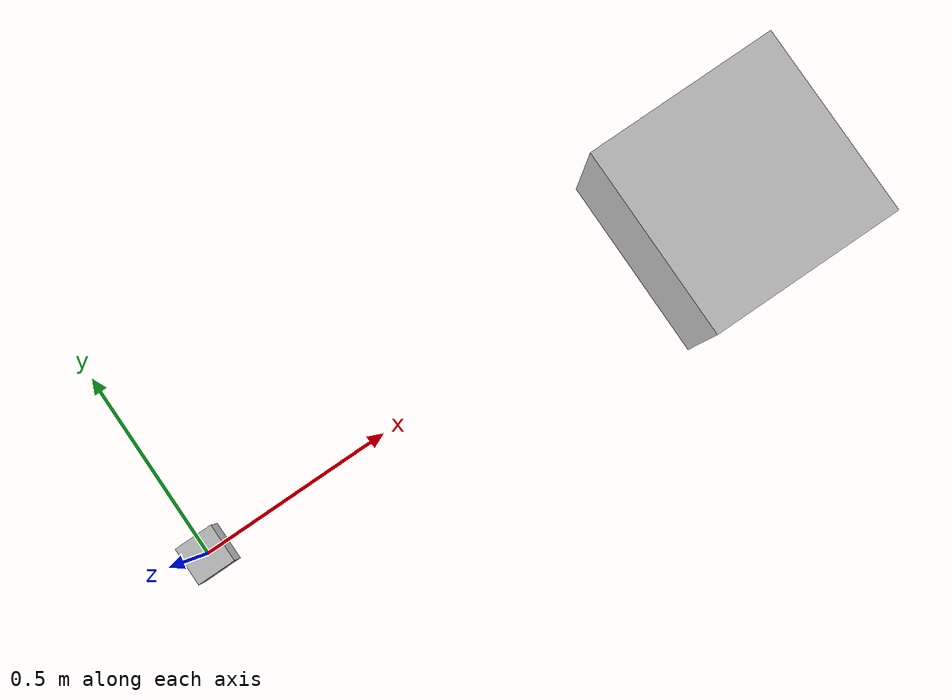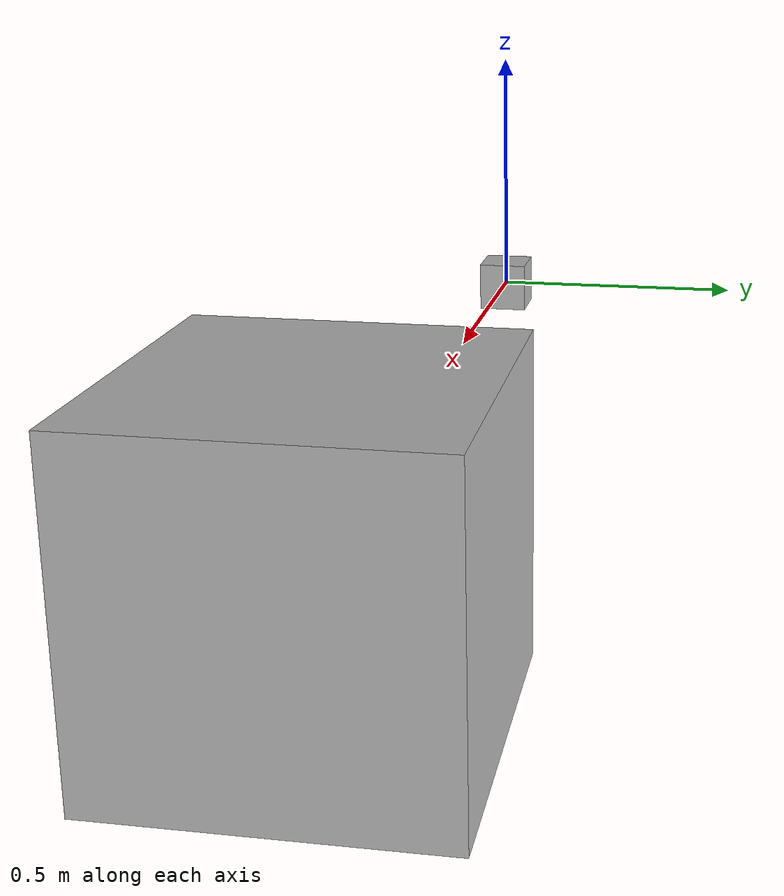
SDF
<?xml version="1.0" ?>
<sdf version="1.7">
  <world name="default">
    <include>
      <uri>model://sun</uri>
    </include>

    <model name="box">
      <static>1</static>
      <pose>1.5 0 0 0 -1.57 0</pose>
      <link name="link">
        <collision name="collision">
          <geometry>
            <box>
              <size>0.5 0.5 0.5</size>
            </box>
          </geometry>
        </collision>
        <visual name="visual">
          <geometry>
            <box>
              <size>0.5 0.5 0.5</size>
            </box>
          </geometry>
        </visual>
      </link>
    </model>

    <scene>
      <background>1.0 0.0 0.0 1</background>
    </scene>

    <model name='camera_model_undistorted'>
      <static>1</static>
      <pose>0 0 0 0 0.0 0</pose>
      <link name='body'>
        <visual name='visual'>
          <geometry>
            <box>
              <size>0.1 0.1 0.1</size>
            </box>
          </geometry>
        </visual>
        <sensor name='camera_sensor_undistorted' type='camera'>
          <visualize>1</visualize>
          <camera>
            <horizontal_fov>0.927295218</horizontal_fov>
            <image>
              <width>640</width>
              <height>480</height>
              <format>R8G8B8</format>
            </image>
            <clip>
              <near>0.1</near>
              <far>100</far>
            </clip>
          </camera>
          <always_on>1</always_on>
          <update_rate>10</update_rate>
        </sensor>
      </link>
    </model>

    <model name='camera_model_barrel'>
      <static>1</static>
      <pose>0 0 0 0 0.0 0</pose>
      <link name='body'>
        <visual name='visual'>
          <geometry>
            <box>
              <size>0.1 0.1 0.1</size>
            </box>
          </geometry>
        </visual>
        <sensor name='camera_sensor_barrel' type='camera'>
          <visualize>1</visualize>
          <camera>
            <horizontal_fov>0.927295218</horizontal_fov>
            <image>
              <width>640</width>
              <height>480</height>
              <format>R8G8B8</format>
            </image>
            <clip>
              <near>0.1</near>
              <far>100</far>
            </clip>
            <distortion>
              <k1>-0.5</k1>
              <k2>0</k2>
              <k3>0</k3>
              <p1>0</p1>
              <p2>0</p2>
              <center>0.5 0.5</center>
            </distortion>
          </camera>
          <always_on>1</always_on>
          <update_rate>10</update_rate>
        </sensor>
      </link>
    </model>

    <model name='camera_model_pincushion'>
      <static>1</static>
      <pose>0 0 0 0 0.0 0</pose>
      <link name='body'>
        <visual name='visual'>
          <geometry>
            <box>
              <size>0.1 0.1 0.1</size>
            </box>
          </geometry>
        </visual>
        <sensor name='camera_sensor_pincushion' type='camera'>
          <visualize>1</visualize>
          <camera>
            <horizontal_fov>0.927295218</horizontal_fov>
            <image>
              <width>640</width>
              <height>480</height>
              <format>R8G8B8</format>
            </image>
            <clip>
              <near>0.1</near>
              <far>100</far>
            </clip>
            <distortion>
              <k1>0.5</k1>
              <k2>0</k2>
              <k3>0</k3>
              <p1>0</p1>
              <p2>0</p2>
              <center>0.5 0.5</center>
            </distortion>
          </camera>
          <always_on>1</always_on>
          <update_rate>10</update_rate>
        </sensor>
      </link>
    </model>

  </world>
</sdf>
